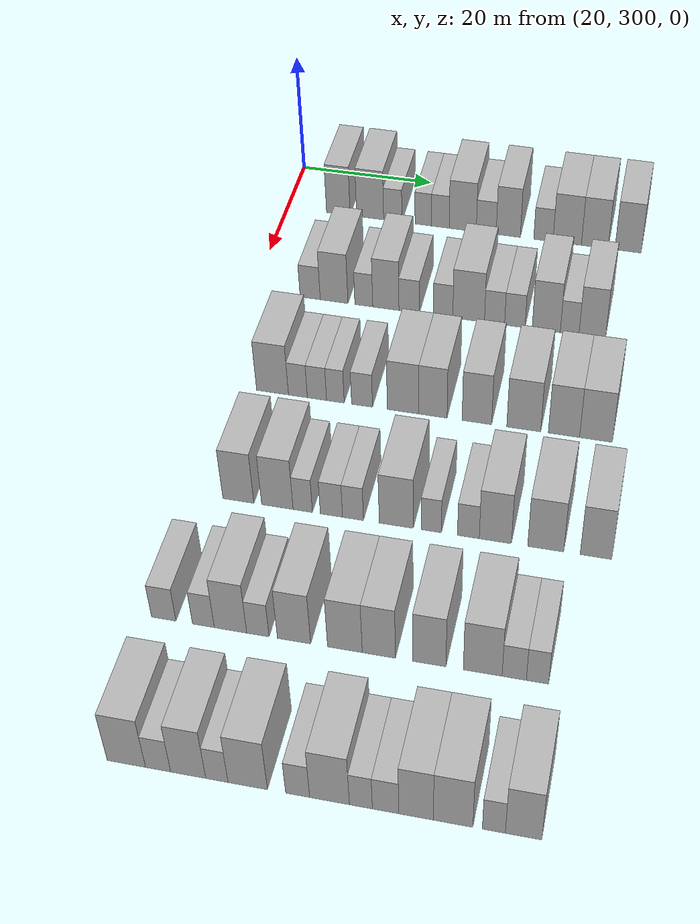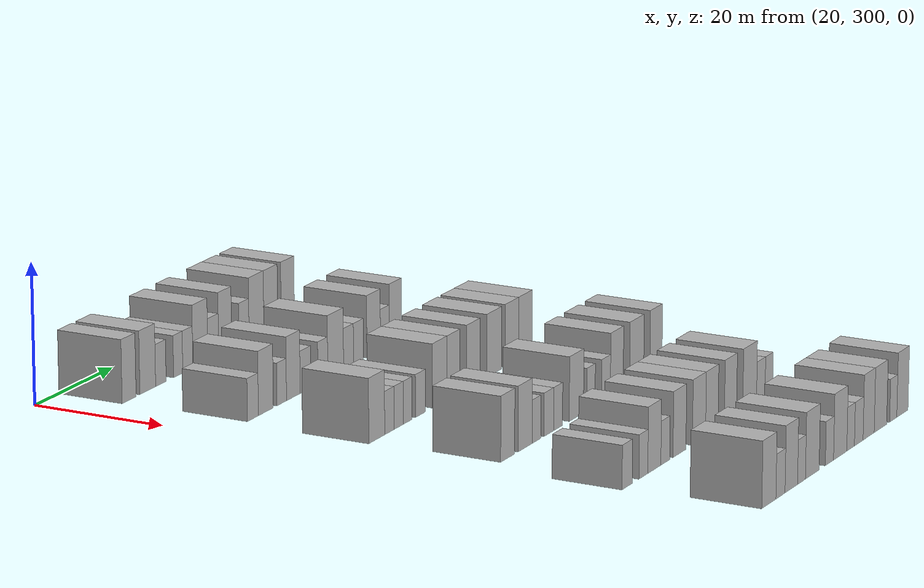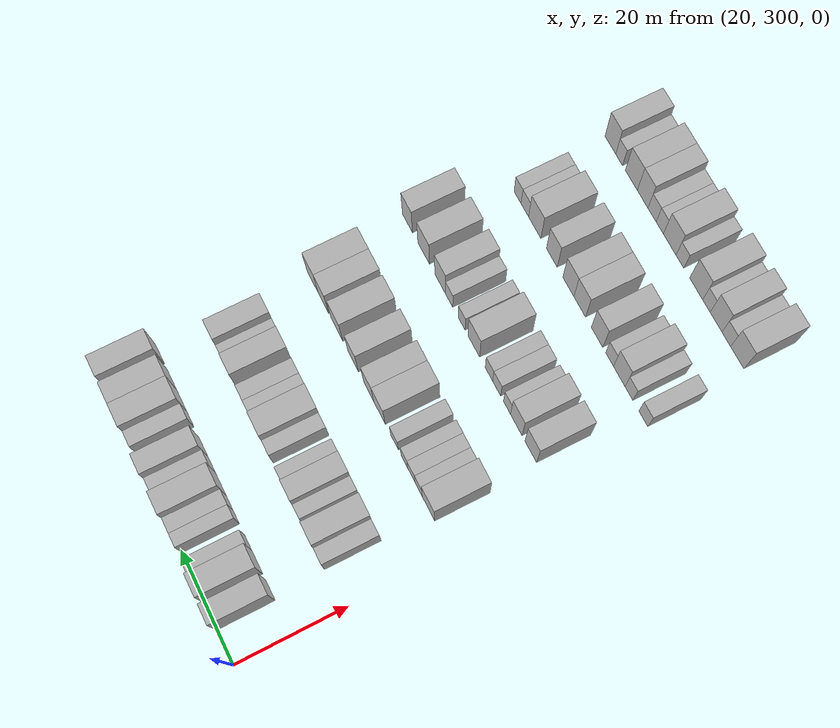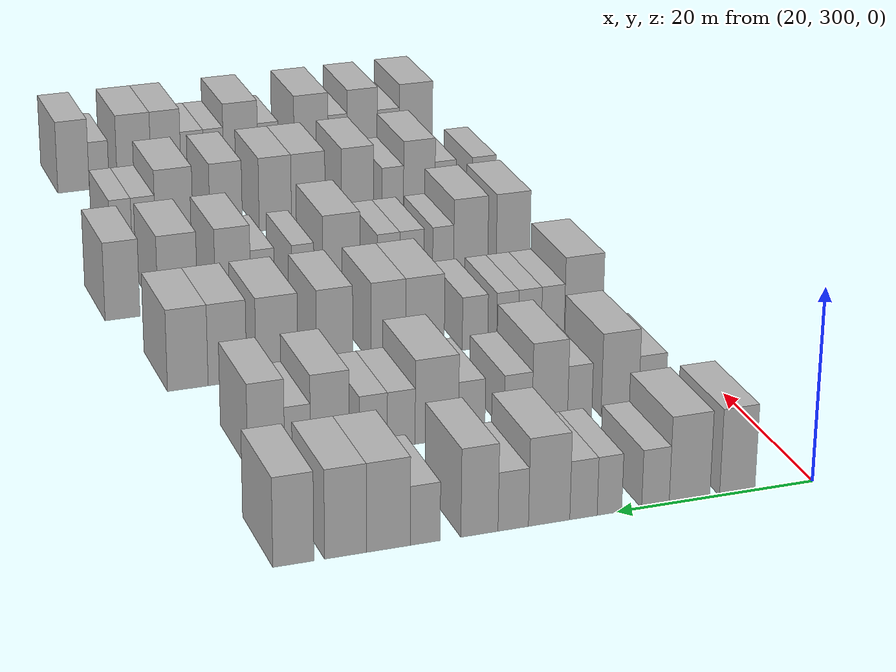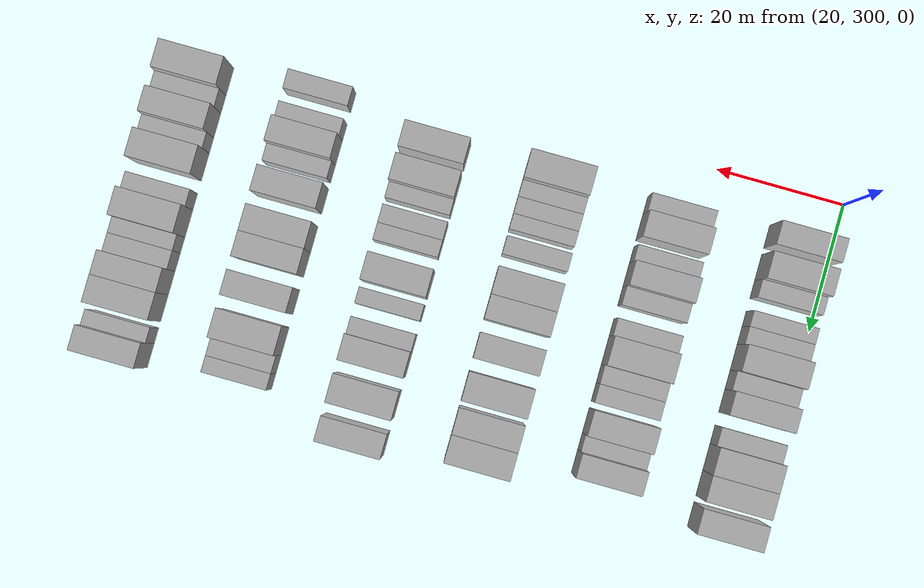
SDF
<sdf version="1.6">
 <world name="default">
  <model name="building_159">
   <static>1</static>
   <pose>25.0000 307.8364 0 0.000000 0.000000 0.000000</pose>
   <link name="link">
    <pose>0 0 4.50 0 0 0</pose>
    <collision name="collision"><geometry><box><size>10.0000 3.6278 9.0000</size></box></geometry></collision>
    <visual name="visual">
     <cast_shadows>0</cast_shadows>
     <geometry><box><size>10.0000 3.6278 9.0000</size></box></geometry>
     <material>
      <script>
       <uri>model://HANNAS_wall/materials/scripts</uri>
       <uri>model://HANNAS_wall/materials/textures</uri>
       <name>vrc/HANNAS_wall</name>
      </script>
     </material>
    </visual>
   </link>
  </model>
  <model name="building_160">
   <static>1</static>
   <pose>25.0000 312.7195 0 0.000000 0.000000 0.000000</pose>
   <link name="link">
    <pose>0 0 4.50 0 0 0</pose>
    <collision name="collision"><geometry><box><size>10.0000 4.1385 9.0000</size></box></geometry></collision>
    <visual name="visual">
     <cast_shadows>0</cast_shadows>
     <geometry><box><size>10.0000 4.1385 9.0000</size></box></geometry>
     <material>
      <script>
       <uri>model://HANNAS_wall/materials/scripts</uri>
       <uri>model://HANNAS_wall/materials/textures</uri>
       <name>vrc/HANNAS_wall</name>
      </script>
     </material>
    </visual>
   </link>
  </model>
  <model name="building_161">
   <static>1</static>
   <pose>25.0000 316.1826 0 0.000000 0.000000 0.000000</pose>
   <link name="link">
    <pose>0 0 3.00 0 0 0</pose>
    <collision name="collision"><geometry><box><size>10.0000 2.7876 6.0000</size></box></geometry></collision>
    <visual name="visual">
     <cast_shadows>0</cast_shadows>
     <geometry><box><size>10.0000 2.7876 6.0000</size></box></geometry>
     <material>
      <script>
       <uri>model://HANNAS_wall/materials/scripts</uri>
       <uri>model://HANNAS_wall/materials/textures</uri>
       <name>vrc/HANNAS_wall</name>
      </script>
     </material>
    </visual>
   </link>
  </model>
  <model name="building_162">
   <static>1</static>
   <pose>25.0000 320.8050 0 0.000000 0.000000 0.000000</pose>
   <link name="link">
    <pose>0 0 3.00 0 0 0</pose>
    <collision name="collision"><geometry><box><size>10.0000 2.4573 6.0000</size></box></geometry></collision>
    <visual name="visual">
     <cast_shadows>0</cast_shadows>
     <geometry><box><size>10.0000 2.4573 6.0000</size></box></geometry>
     <material>
      <script>
       <uri>model://HANNAS_wall/materials/scripts</uri>
       <uri>model://HANNAS_wall/materials/textures</uri>
       <name>vrc/HANNAS_wall</name>
      </script>
     </material>
    </visual>
   </link>
  </model>
  <model name="building_163">
   <static>1</static>
   <pose>25.0000 323.3936 0 0.000000 0.000000 0.000000</pose>
   <link name="link">
    <pose>0 0 3.00 0 0 0</pose>
    <collision name="collision"><geometry><box><size>10.0000 2.7198 6.0000</size></box></geometry></collision>
    <visual name="visual">
     <cast_shadows>0</cast_shadows>
     <geometry><box><size>10.0000 2.7198 6.0000</size></box></geometry>
     <material>
      <script>
       <uri>model://HANNAS_wall/materials/scripts</uri>
       <uri>model://HANNAS_wall/materials/textures</uri>
       <name>vrc/HANNAS_wall</name>
      </script>
     </material>
    </visual>
   </link>
  </model>
  <model name="building_164">
   <static>1</static>
   <pose>25.0000 326.7946 0 0.000000 0.000000 0.000000</pose>
   <link name="link">
    <pose>0 0 4.50 0 0 0</pose>
    <collision name="collision"><geometry><box><size>10.0000 4.0823 9.0000</size></box></geometry></collision>
    <visual name="visual">
     <cast_shadows>0</cast_shadows>
     <geometry><box><size>10.0000 4.0823 9.0000</size></box></geometry>
     <material>
      <script>
       <uri>model://HANNAS_wall/materials/scripts</uri>
       <uri>model://HANNAS_wall/materials/textures</uri>
       <name>vrc/HANNAS_wall</name>
      </script>
     </material>
    </visual>
   </link>
  </model>
  <model name="building_165">
   <static>1</static>
   <pose>25.0000 330.3265 0 0.000000 0.000000 0.000000</pose>
   <link name="link">
    <pose>0 0 3.00 0 0 0</pose>
    <collision name="collision"><geometry><box><size>10.0000 2.9815 6.0000</size></box></geometry></collision>
    <visual name="visual">
     <cast_shadows>0</cast_shadows>
     <geometry><box><size>10.0000 2.9815 6.0000</size></box></geometry>
     <material>
      <script>
       <uri>model://HANNAS_wall/materials/scripts</uri>
       <uri>model://HANNAS_wall/materials/textures</uri>
       <name>vrc/HANNAS_wall</name>
      </script>
     </material>
    </visual>
   </link>
  </model>
  <model name="building_166">
   <static>1</static>
   <pose>25.0000 333.6222 0 0.000000 0.000000 0.000000</pose>
   <link name="link">
    <pose>0 0 4.50 0 0 0</pose>
    <collision name="collision"><geometry><box><size>10.0000 3.6100 9.0000</size></box></geometry></collision>
    <visual name="visual">
     <cast_shadows>0</cast_shadows>
     <geometry><box><size>10.0000 3.6100 9.0000</size></box></geometry>
     <material>
      <script>
       <uri>model://HANNAS_wall/materials/scripts</uri>
       <uri>model://HANNAS_wall/materials/textures</uri>
       <name>vrc/HANNAS_wall</name>
      </script>
     </material>
    </visual>
   </link>
  </model>
  <model name="building_167">
   <static>1</static>
   <pose>25.0000 338.8561 0 0.000000 0.000000 0.000000</pose>
   <link name="link">
    <pose>0 0 3.00 0 0 0</pose>
    <collision name="collision"><geometry><box><size>10.0000 2.8579 6.0000</size></box></geometry></collision>
    <visual name="visual">
     <cast_shadows>0</cast_shadows>
     <geometry><box><size>10.0000 2.8579 6.0000</size></box></geometry>
     <material>
      <script>
       <uri>model://HANNAS_wall/materials/scripts</uri>
       <uri>model://HANNAS_wall/materials/textures</uri>
       <name>vrc/HANNAS_wall</name>
      </script>
     </material>
    </visual>
   </link>
  </model>
  <model name="building_168">
   <static>1</static>
   <pose>25.0000 342.3810 0 0.000000 0.000000 0.000000</pose>
   <link name="link">
    <pose>0 0 4.50 0 0 0</pose>
    <collision name="collision"><geometry><box><size>10.0000 4.1919 9.0000</size></box></geometry></collision>
    <visual name="visual">
     <cast_shadows>0</cast_shadows>
     <geometry><box><size>10.0000 4.1919 9.0000</size></box></geometry>
     <material>
      <script>
       <uri>model://HANNAS_wall/materials/scripts</uri>
       <uri>model://HANNAS_wall/materials/textures</uri>
       <name>vrc/HANNAS_wall</name>
      </script>
     </material>
    </visual>
   </link>
  </model>
  <model name="building_169">
   <static>1</static>
   <pose>25.0000 346.4459 0 0.000000 0.000000 0.000000</pose>
   <link name="link">
    <pose>0 0 4.50 0 0 0</pose>
    <collision name="collision"><geometry><box><size>10.0000 3.9378 9.0000</size></box></geometry></collision>
    <visual name="visual">
     <cast_shadows>0</cast_shadows>
     <geometry><box><size>10.0000 3.9378 9.0000</size></box></geometry>
     <material>
      <script>
       <uri>model://HANNAS_wall/materials/scripts</uri>
       <uri>model://HANNAS_wall/materials/textures</uri>
       <name>vrc/HANNAS_wall</name>
      </script>
     </material>
    </visual>
   </link>
  </model>
  <model name="building_170">
   <static>1</static>
   <pose>25.0000 351.3313 0 0.000000 0.000000 0.000000</pose>
   <link name="link">
    <pose>0 0 4.50 0 0 0</pose>
    <collision name="collision"><geometry><box><size>10.0000 3.8329 9.0000</size></box></geometry></collision>
    <visual name="visual">
     <cast_shadows>0</cast_shadows>
     <geometry><box><size>10.0000 3.8329 9.0000</size></box></geometry>
     <material>
      <script>
       <uri>model://HANNAS_wall/materials/scripts</uri>
       <uri>model://HANNAS_wall/materials/textures</uri>
       <name>vrc/HANNAS_wall</name>
      </script>
     </material>
    </visual>
   </link>
  </model>
  <model name="building_331">
   <static>1</static>
   <pose>44.0000 308.3106 0 0.000000 0.000000 0.000000</pose>
   <link name="link">
    <pose>0 0 3.00 0 0 0</pose>
    <collision name="collision"><geometry><box><size>10.0000 2.9301 6.0000</size></box></geometry></collision>
    <visual name="visual">
     <cast_shadows>0</cast_shadows>
     <geometry><box><size>10.0000 2.9301 6.0000</size></box></geometry>
     <material>
      <script>
       <uri>model://HANNAS_wall/materials/scripts</uri>
       <uri>model://HANNAS_wall/materials/textures</uri>
       <name>vrc/HANNAS_wall</name>
      </script>
     </material>
    </visual>
   </link>
  </model>
  <model name="building_332">
   <static>1</static>
   <pose>44.0000 311.7897 0 0.000000 0.000000 0.000000</pose>
   <link name="link">
    <pose>0 0 4.50 0 0 0</pose>
    <collision name="collision"><geometry><box><size>10.0000 4.0280 9.0000</size></box></geometry></collision>
    <visual name="visual">
     <cast_shadows>0</cast_shadows>
     <geometry><box><size>10.0000 4.0280 9.0000</size></box></geometry>
     <material>
      <script>
       <uri>model://HANNAS_wall/materials/scripts</uri>
       <uri>model://HANNAS_wall/materials/textures</uri>
       <name>vrc/HANNAS_wall</name>
      </script>
     </material>
    </visual>
   </link>
  </model>
  <model name="building_333">
   <static>1</static>
   <pose>44.0000 316.0957 0 0.000000 0.000000 0.000000</pose>
   <link name="link">
    <pose>0 0 3.00 0 0 0</pose>
    <collision name="collision"><geometry><box><size>10.0000 2.5841 6.0000</size></box></geometry></collision>
    <visual name="visual">
     <cast_shadows>0</cast_shadows>
     <geometry><box><size>10.0000 2.5841 6.0000</size></box></geometry>
     <material>
      <script>
       <uri>model://HANNAS_wall/materials/scripts</uri>
       <uri>model://HANNAS_wall/materials/textures</uri>
       <name>vrc/HANNAS_wall</name>
      </script>
     </material>
    </visual>
   </link>
  </model>
  <model name="building_334">
   <static>1</static>
   <pose>44.0000 319.2707 0 0.000000 0.000000 0.000000</pose>
   <link name="link">
    <pose>0 0 4.50 0 0 0</pose>
    <collision name="collision"><geometry><box><size>10.0000 3.7658 9.0000</size></box></geometry></collision>
    <visual name="visual">
     <cast_shadows>0</cast_shadows>
     <geometry><box><size>10.0000 3.7658 9.0000</size></box></geometry>
     <material>
      <script>
       <uri>model://HANNAS_wall/materials/scripts</uri>
       <uri>model://HANNAS_wall/materials/textures</uri>
       <name>vrc/HANNAS_wall</name>
      </script>
     </material>
    </visual>
   </link>
  </model>
  <model name="building_335">
   <static>1</static>
   <pose>44.0000 322.6219 0 0.000000 0.000000 0.000000</pose>
   <link name="link">
    <pose>0 0 3.00 0 0 0</pose>
    <collision name="collision"><geometry><box><size>10.0000 2.9367 6.0000</size></box></geometry></collision>
    <visual name="visual">
     <cast_shadows>0</cast_shadows>
     <geometry><box><size>10.0000 2.9367 6.0000</size></box></geometry>
     <material>
      <script>
       <uri>model://HANNAS_wall/materials/scripts</uri>
       <uri>model://HANNAS_wall/materials/textures</uri>
       <name>vrc/HANNAS_wall</name>
      </script>
     </material>
    </visual>
   </link>
  </model>
  <model name="building_336">
   <static>1</static>
   <pose>44.0000 327.4677 0 0.000000 0.000000 0.000000</pose>
   <link name="link">
    <pose>0 0 3.00 0 0 0</pose>
    <collision name="collision"><geometry><box><size>10.0000 2.7549 6.0000</size></box></geometry></collision>
    <visual name="visual">
     <cast_shadows>0</cast_shadows>
     <geometry><box><size>10.0000 2.7549 6.0000</size></box></geometry>
     <material>
      <script>
       <uri>model://HANNAS_wall/materials/scripts</uri>
       <uri>model://HANNAS_wall/materials/textures</uri>
       <name>vrc/HANNAS_wall</name>
      </script>
     </material>
    </visual>
   </link>
  </model>
  <model name="building_337">
   <static>1</static>
   <pose>44.0000 331.0854 0 0.000000 0.000000 0.000000</pose>
   <link name="link">
    <pose>0 0 4.50 0 0 0</pose>
    <collision name="collision"><geometry><box><size>10.0000 4.4804 9.0000</size></box></geometry></collision>
    <visual name="visual">
     <cast_shadows>0</cast_shadows>
     <geometry><box><size>10.0000 4.4804 9.0000</size></box></geometry>
     <material>
      <script>
       <uri>model://HANNAS_wall/materials/scripts</uri>
       <uri>model://HANNAS_wall/materials/textures</uri>
       <name>vrc/HANNAS_wall</name>
      </script>
     </material>
    </visual>
   </link>
  </model>
  <model name="building_338">
   <static>1</static>
   <pose>44.0000 334.7438 0 0.000000 0.000000 0.000000</pose>
   <link name="link">
    <pose>0 0 3.00 0 0 0</pose>
    <collision name="collision"><geometry><box><size>10.0000 2.8365 6.0000</size></box></geometry></collision>
    <visual name="visual">
     <cast_shadows>0</cast_shadows>
     <geometry><box><size>10.0000 2.8365 6.0000</size></box></geometry>
     <material>
      <script>
       <uri>model://HANNAS_wall/materials/scripts</uri>
       <uri>model://HANNAS_wall/materials/textures</uri>
       <name>vrc/HANNAS_wall</name>
      </script>
     </material>
    </visual>
   </link>
  </model>
  <model name="building_339">
   <static>1</static>
   <pose>44.0000 337.5961 0 0.000000 0.000000 0.000000</pose>
   <link name="link">
    <pose>0 0 3.00 0 0 0</pose>
    <collision name="collision"><geometry><box><size>10.0000 2.8681 6.0000</size></box></geometry></collision>
    <visual name="visual">
     <cast_shadows>0</cast_shadows>
     <geometry><box><size>10.0000 2.8681 6.0000</size></box></geometry>
     <material>
      <script>
       <uri>model://HANNAS_wall/materials/scripts</uri>
       <uri>model://HANNAS_wall/materials/textures</uri>
       <name>vrc/HANNAS_wall</name>
      </script>
     </material>
    </visual>
   </link>
  </model>
  <model name="building_340">
   <static>1</static>
   <pose>44.0000 341.9923 0 0.000000 0.000000 0.000000</pose>
   <link name="link">
    <pose>0 0 4.50 0 0 0</pose>
    <collision name="collision"><geometry><box><size>10.0000 3.9243 9.0000</size></box></geometry></collision>
    <visual name="visual">
     <cast_shadows>0</cast_shadows>
     <geometry><box><size>10.0000 3.9243 9.0000</size></box></geometry>
     <material>
      <script>
       <uri>model://HANNAS_wall/materials/scripts</uri>
       <uri>model://HANNAS_wall/materials/textures</uri>
       <name>vrc/HANNAS_wall</name>
      </script>
     </material>
    </visual>
   </link>
  </model>
  <model name="building_341">
   <static>1</static>
   <pose>44.0000 345.2522 0 0.000000 0.000000 0.000000</pose>
   <link name="link">
    <pose>0 0 3.00 0 0 0</pose>
    <collision name="collision"><geometry><box><size>10.0000 2.5956 6.0000</size></box></geometry></collision>
    <visual name="visual">
     <cast_shadows>0</cast_shadows>
     <geometry><box><size>10.0000 2.5956 6.0000</size></box></geometry>
     <material>
      <script>
       <uri>model://HANNAS_wall/materials/scripts</uri>
       <uri>model://HANNAS_wall/materials/textures</uri>
       <name>vrc/HANNAS_wall</name>
      </script>
     </material>
    </visual>
   </link>
  </model>
  <model name="building_342">
   <static>1</static>
   <pose>44.0000 348.3865 0 0.000000 0.000000 0.000000</pose>
   <link name="link">
    <pose>0 0 4.50 0 0 0</pose>
    <collision name="collision"><geometry><box><size>10.0000 3.6729 9.0000</size></box></geometry></collision>
    <visual name="visual">
     <cast_shadows>0</cast_shadows>
     <geometry><box><size>10.0000 3.6729 9.0000</size></box></geometry>
     <material>
      <script>
       <uri>model://HANNAS_wall/materials/scripts</uri>
       <uri>model://HANNAS_wall/materials/textures</uri>
       <name>vrc/HANNAS_wall</name>
      </script>
     </material>
    </visual>
   </link>
  </model>
  <model name="building_511">
   <static>1</static>
   <pose>63.0000 307.9824 0 0.000000 0.000000 0.000000</pose>
   <link name="link">
    <pose>0 0 4.50 0 0 0</pose>
    <collision name="collision"><geometry><box><size>10.0000 4.3789 9.0000</size></box></geometry></collision>
    <visual name="visual">
     <cast_shadows>0</cast_shadows>
     <geometry><box><size>10.0000 4.3789 9.0000</size></box></geometry>
     <material>
      <script>
       <uri>model://HANNAS_wall/materials/scripts</uri>
       <uri>model://HANNAS_wall/materials/textures</uri>
       <name>vrc/HANNAS_wall</name>
      </script>
     </material>
    </visual>
   </link>
  </model>
  <model name="building_512">
   <static>1</static>
   <pose>63.0000 311.4646 0 0.000000 0.000000 0.000000</pose>
   <link name="link">
    <pose>0 0 3.00 0 0 0</pose>
    <collision name="collision"><geometry><box><size>10.0000 2.5856 6.0000</size></box></geometry></collision>
    <visual name="visual">
     <cast_shadows>0</cast_shadows>
     <geometry><box><size>10.0000 2.5856 6.0000</size></box></geometry>
     <material>
      <script>
       <uri>model://HANNAS_wall/materials/scripts</uri>
       <uri>model://HANNAS_wall/materials/textures</uri>
       <name>vrc/HANNAS_wall</name>
      </script>
     </material>
    </visual>
   </link>
  </model>
  <model name="building_513">
   <static>1</static>
   <pose>63.0000 314.0671 0 0.000000 0.000000 0.000000</pose>
   <link name="link">
    <pose>0 0 3.00 0 0 0</pose>
    <collision name="collision"><geometry><box><size>10.0000 2.6192 6.0000</size></box></geometry></collision>
    <visual name="visual">
     <cast_shadows>0</cast_shadows>
     <geometry><box><size>10.0000 2.6192 6.0000</size></box></geometry>
     <material>
      <script>
       <uri>model://HANNAS_wall/materials/scripts</uri>
       <uri>model://HANNAS_wall/materials/textures</uri>
       <name>vrc/HANNAS_wall</name>
      </script>
     </material>
    </visual>
   </link>
  </model>
  <model name="building_514">
   <static>1</static>
   <pose>63.0000 316.5784 0 0.000000 0.000000 0.000000</pose>
   <link name="link">
    <pose>0 0 3.00 0 0 0</pose>
    <collision name="collision"><geometry><box><size>10.0000 2.4034 6.0000</size></box></geometry></collision>
    <visual name="visual">
     <cast_shadows>0</cast_shadows>
     <geometry><box><size>10.0000 2.4034 6.0000</size></box></geometry>
     <material>
      <script>
       <uri>model://HANNAS_wall/materials/scripts</uri>
       <uri>model://HANNAS_wall/materials/textures</uri>
       <name>vrc/HANNAS_wall</name>
      </script>
     </material>
    </visual>
   </link>
  </model>
  <model name="building_515">
   <static>1</static>
   <pose>63.0000 320.1967 0 0.000000 0.000000 0.000000</pose>
   <link name="link">
    <pose>0 0 3.00 0 0 0</pose>
    <collision name="collision"><geometry><box><size>10.0000 2.8332 6.0000</size></box></geometry></collision>
    <visual name="visual">
     <cast_shadows>0</cast_shadows>
     <geometry><box><size>10.0000 2.8332 6.0000</size></box></geometry>
     <material>
      <script>
       <uri>model://HANNAS_wall/materials/scripts</uri>
       <uri>model://HANNAS_wall/materials/textures</uri>
       <name>vrc/HANNAS_wall</name>
      </script>
     </material>
    </visual>
   </link>
  </model>
  <model name="building_516">
   <static>1</static>
   <pose>63.0000 325.7327 0 0.000000 0.000000 0.000000</pose>
   <link name="link">
    <pose>0 0 4.50 0 0 0</pose>
    <collision name="collision"><geometry><box><size>10.0000 4.2389 9.0000</size></box></geometry></collision>
    <visual name="visual">
     <cast_shadows>0</cast_shadows>
     <geometry><box><size>10.0000 4.2389 9.0000</size></box></geometry>
     <material>
      <script>
       <uri>model://HANNAS_wall/materials/scripts</uri>
       <uri>model://HANNAS_wall/materials/textures</uri>
       <name>vrc/HANNAS_wall</name>
      </script>
     </material>
    </visual>
   </link>
  </model>
  <model name="building_517">
   <static>1</static>
   <pose>63.0000 329.7349 0 0.000000 0.000000 0.000000</pose>
   <link name="link">
    <pose>0 0 4.50 0 0 0</pose>
    <collision name="collision"><geometry><box><size>10.0000 3.7653 9.0000</size></box></geometry></collision>
    <visual name="visual">
     <cast_shadows>0</cast_shadows>
     <geometry><box><size>10.0000 3.7653 9.0000</size></box></geometry>
     <material>
      <script>
       <uri>model://HANNAS_wall/materials/scripts</uri>
       <uri>model://HANNAS_wall/materials/textures</uri>
       <name>vrc/HANNAS_wall</name>
      </script>
     </material>
    </visual>
   </link>
  </model>
  <model name="building_518">
   <static>1</static>
   <pose>63.0000 335.5741 0 0.000000 0.000000 0.000000</pose>
   <link name="link">
    <pose>0 0 4.50 0 0 0</pose>
    <collision name="collision"><geometry><box><size>10.0000 3.9132 9.0000</size></box></geometry></collision>
    <visual name="visual">
     <cast_shadows>0</cast_shadows>
     <geometry><box><size>10.0000 3.9132 9.0000</size></box></geometry>
     <material>
      <script>
       <uri>model://HANNAS_wall/materials/scripts</uri>
       <uri>model://HANNAS_wall/materials/textures</uri>
       <name>vrc/HANNAS_wall</name>
      </script>
     </material>
    </visual>
   </link>
  </model>
  <model name="building_519">
   <static>1</static>
   <pose>63.0000 341.7600 0 0.000000 0.000000 0.000000</pose>
   <link name="link">
    <pose>0 0 4.50 0 0 0</pose>
    <collision name="collision"><geometry><box><size>10.0000 4.4586 9.0000</size></box></geometry></collision>
    <visual name="visual">
     <cast_shadows>0</cast_shadows>
     <geometry><box><size>10.0000 4.4586 9.0000</size></box></geometry>
     <material>
      <script>
       <uri>model://HANNAS_wall/materials/scripts</uri>
       <uri>model://HANNAS_wall/materials/textures</uri>
       <name>vrc/HANNAS_wall</name>
      </script>
     </material>
    </visual>
   </link>
  </model>
  <model name="building_520">
   <static>1</static>
   <pose>63.0000 347.0267 0 0.000000 0.000000 0.000000</pose>
   <link name="link">
    <pose>0 0 4.50 0 0 0</pose>
    <collision name="collision"><geometry><box><size>10.0000 4.0749 9.0000</size></box></geometry></collision>
    <visual name="visual">
     <cast_shadows>0</cast_shadows>
     <geometry><box><size>10.0000 4.0749 9.0000</size></box></geometry>
     <material>
      <script>
       <uri>model://HANNAS_wall/materials/scripts</uri>
       <uri>model://HANNAS_wall/materials/textures</uri>
       <name>vrc/HANNAS_wall</name>
      </script>
     </material>
    </visual>
   </link>
  </model>
  <model name="building_521">
   <static>1</static>
   <pose>63.0000 351.1937 0 0.000000 0.000000 0.000000</pose>
   <link name="link">
    <pose>0 0 4.50 0 0 0</pose>
    <collision name="collision"><geometry><box><size>10.0000 4.2590 9.0000</size></box></geometry></collision>
    <visual name="visual">
     <cast_shadows>0</cast_shadows>
     <geometry><box><size>10.0000 4.2590 9.0000</size></box></geometry>
     <material>
      <script>
       <uri>model://HANNAS_wall/materials/scripts</uri>
       <uri>model://HANNAS_wall/materials/textures</uri>
       <name>vrc/HANNAS_wall</name>
      </script>
     </material>
    </visual>
   </link>
  </model>
  <model name="building_685">
   <static>1</static>
   <pose>82.0000 308.7541 0 0.000000 0.000000 0.000000</pose>
   <link name="link">
    <pose>0 0 4.50 0 0 0</pose>
    <collision name="collision"><geometry><box><size>10.0000 4.0069 9.0000</size></box></geometry></collision>
    <visual name="visual">
     <cast_shadows>0</cast_shadows>
     <geometry><box><size>10.0000 4.0069 9.0000</size></box></geometry>
     <material>
      <script>
       <uri>model://HANNAS_wall/materials/scripts</uri>
       <uri>model://HANNAS_wall/materials/textures</uri>
       <name>vrc/HANNAS_wall</name>
      </script>
     </material>
    </visual>
   </link>
  </model>
  <model name="building_686">
   <static>1</static>
   <pose>82.0000 313.7742 0 0.000000 0.000000 0.000000</pose>
   <link name="link">
    <pose>0 0 4.50 0 0 0</pose>
    <collision name="collision"><geometry><box><size>10.0000 4.0332 9.0000</size></box></geometry></collision>
    <visual name="visual">
     <cast_shadows>0</cast_shadows>
     <geometry><box><size>10.0000 4.0332 9.0000</size></box></geometry>
     <material>
      <script>
       <uri>model://HANNAS_wall/materials/scripts</uri>
       <uri>model://HANNAS_wall/materials/textures</uri>
       <name>vrc/HANNAS_wall</name>
      </script>
     </material>
    </visual>
   </link>
  </model>
  <model name="building_687">
   <static>1</static>
   <pose>82.0000 317.0277 0 0.000000 0.000000 0.000000</pose>
   <link name="link">
    <pose>0 0 3.00 0 0 0</pose>
    <collision name="collision"><geometry><box><size>10.0000 2.4738 6.0000</size></box></geometry></collision>
    <visual name="visual">
     <cast_shadows>0</cast_shadows>
     <geometry><box><size>10.0000 2.4738 6.0000</size></box></geometry>
     <material>
      <script>
       <uri>model://HANNAS_wall/materials/scripts</uri>
       <uri>model://HANNAS_wall/materials/textures</uri>
       <name>vrc/HANNAS_wall</name>
      </script>
     </material>
    </visual>
   </link>
  </model>
  <model name="building_688">
   <static>1</static>
   <pose>82.0000 320.6768 0 0.000000 0.000000 0.000000</pose>
   <link name="link">
    <pose>0 0 3.00 0 0 0</pose>
    <collision name="collision"><geometry><box><size>10.0000 2.8245 6.0000</size></box></geometry></collision>
    <visual name="visual">
     <cast_shadows>0</cast_shadows>
     <geometry><box><size>10.0000 2.8245 6.0000</size></box></geometry>
     <material>
      <script>
       <uri>model://HANNAS_wall/materials/scripts</uri>
       <uri>model://HANNAS_wall/materials/textures</uri>
       <name>vrc/HANNAS_wall</name>
      </script>
     </material>
    </visual>
   </link>
  </model>
  <model name="building_689">
   <static>1</static>
   <pose>82.0000 323.4099 0 0.000000 0.000000 0.000000</pose>
   <link name="link">
    <pose>0 0 3.00 0 0 0</pose>
    <collision name="collision"><geometry><box><size>10.0000 2.6417 6.0000</size></box></geometry></collision>
    <visual name="visual">
     <cast_shadows>0</cast_shadows>
     <geometry><box><size>10.0000 2.6417 6.0000</size></box></geometry>
     <material>
      <script>
       <uri>model://HANNAS_wall/materials/scripts</uri>
       <uri>model://HANNAS_wall/materials/textures</uri>
       <name>vrc/HANNAS_wall</name>
      </script>
     </material>
    </visual>
   </link>
  </model>
  <model name="building_690">
   <static>1</static>
   <pose>82.0000 328.8628 0 0.000000 0.000000 0.000000</pose>
   <link name="link">
    <pose>0 0 4.50 0 0 0</pose>
    <collision name="collision"><geometry><box><size>10.0000 4.2643 9.0000</size></box></geometry></collision>
    <visual name="visual">
     <cast_shadows>0</cast_shadows>
     <geometry><box><size>10.0000 4.2643 9.0000</size></box></geometry>
     <material>
      <script>
       <uri>model://HANNAS_wall/materials/scripts</uri>
       <uri>model://HANNAS_wall/materials/textures</uri>
       <name>vrc/HANNAS_wall</name>
      </script>
     </material>
    </visual>
   </link>
  </model>
  <model name="building_691">
   <static>1</static>
   <pose>82.0000 333.2507 0 0.000000 0.000000 0.000000</pose>
   <link name="link">
    <pose>0 0 3.00 0 0 0</pose>
    <collision name="collision"><geometry><box><size>10.0000 2.5115 6.0000</size></box></geometry></collision>
    <visual name="visual">
     <cast_shadows>0</cast_shadows>
     <geometry><box><size>10.0000 2.5115 6.0000</size></box></geometry>
     <material>
      <script>
       <uri>model://HANNAS_wall/materials/scripts</uri>
       <uri>model://HANNAS_wall/materials/textures</uri>
       <name>vrc/HANNAS_wall</name>
      </script>
     </material>
    </visual>
   </link>
  </model>
  <model name="building_692">
   <static>1</static>
   <pose>82.0000 337.8518 0 0.000000 0.000000 0.000000</pose>
   <link name="link">
    <pose>0 0 3.00 0 0 0</pose>
    <collision name="collision"><geometry><box><size>10.0000 2.6907 6.0000</size></box></geometry></collision>
    <visual name="visual">
     <cast_shadows>0</cast_shadows>
     <geometry><box><size>10.0000 2.6907 6.0000</size></box></geometry>
     <material>
      <script>
       <uri>model://HANNAS_wall/materials/scripts</uri>
       <uri>model://HANNAS_wall/materials/textures</uri>
       <name>vrc/HANNAS_wall</name>
      </script>
     </material>
    </visual>
   </link>
  </model>
  <model name="building_693">
   <static>1</static>
   <pose>82.0000 341.1807 0 0.000000 0.000000 0.000000</pose>
   <link name="link">
    <pose>0 0 4.50 0 0 0</pose>
    <collision name="collision"><geometry><box><size>10.0000 3.9673 9.0000</size></box></geometry></collision>
    <visual name="visual">
     <cast_shadows>0</cast_shadows>
     <geometry><box><size>10.0000 3.9673 9.0000</size></box></geometry>
     <material>
      <script>
       <uri>model://HANNAS_wall/materials/scripts</uri>
       <uri>model://HANNAS_wall/materials/textures</uri>
       <name>vrc/HANNAS_wall</name>
      </script>
     </material>
    </visual>
   </link>
  </model>
  <model name="building_694">
   <static>1</static>
   <pose>82.0000 347.3627 0 0.000000 0.000000 0.000000</pose>
   <link name="link">
    <pose>0 0 4.50 0 0 0</pose>
    <collision name="collision"><geometry><box><size>10.0000 4.3966 9.0000</size></box></geometry></collision>
    <visual name="visual">
     <cast_shadows>0</cast_shadows>
     <geometry><box><size>10.0000 4.3966 9.0000</size></box></geometry>
     <material>
      <script>
       <uri>model://HANNAS_wall/materials/scripts</uri>
       <uri>model://HANNAS_wall/materials/textures</uri>
       <name>vrc/HANNAS_wall</name>
      </script>
     </material>
    </visual>
   </link>
  </model>
  <model name="building_695">
   <static>1</static>
   <pose>82.0000 353.4793 0 0.000000 0.000000 0.000000</pose>
   <link name="link">
    <pose>0 0 4.50 0 0 0</pose>
    <collision name="collision"><geometry><box><size>10.0000 3.8367 9.0000</size></box></geometry></collision>
    <visual name="visual">
     <cast_shadows>0</cast_shadows>
     <geometry><box><size>10.0000 3.8367 9.0000</size></box></geometry>
     <material>
      <script>
       <uri>model://HANNAS_wall/materials/scripts</uri>
       <uri>model://HANNAS_wall/materials/textures</uri>
       <name>vrc/HANNAS_wall</name>
      </script>
     </material>
    </visual>
   </link>
  </model>
  <model name="building_859">
   <static>1</static>
   <pose>101.0000 305.2281 0 0.000000 0.000000 0.000000</pose>
   <link name="link">
    <pose>0 0 3.00 0 0 0</pose>
    <collision name="collision"><geometry><box><size>10.0000 2.9692 6.0000</size></box></geometry></collision>
    <visual name="visual">
     <cast_shadows>0</cast_shadows>
     <geometry><box><size>10.0000 2.9692 6.0000</size></box></geometry>
     <material>
      <script>
       <uri>model://HANNAS_wall/materials/scripts</uri>
       <uri>model://HANNAS_wall/materials/textures</uri>
       <name>vrc/HANNAS_wall</name>
      </script>
     </material>
    </visual>
   </link>
  </model>
  <model name="building_860">
   <static>1</static>
   <pose>101.0000 310.0265 0 0.000000 0.000000 0.000000</pose>
   <link name="link">
    <pose>0 0 3.00 0 0 0</pose>
    <collision name="collision"><geometry><box><size>10.0000 2.6277 6.0000</size></box></geometry></collision>
    <visual name="visual">
     <cast_shadows>0</cast_shadows>
     <geometry><box><size>10.0000 2.6277 6.0000</size></box></geometry>
     <material>
      <script>
       <uri>model://HANNAS_wall/materials/scripts</uri>
       <uri>model://HANNAS_wall/materials/textures</uri>
       <name>vrc/HANNAS_wall</name>
      </script>
     </material>
    </visual>
   </link>
  </model>
  <model name="building_861">
   <static>1</static>
   <pose>101.0000 313.2916 0 0.000000 0.000000 0.000000</pose>
   <link name="link">
    <pose>0 0 4.50 0 0 0</pose>
    <collision name="collision"><geometry><box><size>10.0000 3.9025 9.0000</size></box></geometry></collision>
    <visual name="visual">
     <cast_shadows>0</cast_shadows>
     <geometry><box><size>10.0000 3.9025 9.0000</size></box></geometry>
     <material>
      <script>
       <uri>model://HANNAS_wall/materials/scripts</uri>
       <uri>model://HANNAS_wall/materials/textures</uri>
       <name>vrc/HANNAS_wall</name>
      </script>
     </material>
    </visual>
   </link>
  </model>
  <model name="building_862">
   <static>1</static>
   <pose>101.0000 316.5770 0 0.000000 0.000000 0.000000</pose>
   <link name="link">
    <pose>0 0 3.00 0 0 0</pose>
    <collision name="collision"><geometry><box><size>10.0000 2.6684 6.0000</size></box></geometry></collision>
    <visual name="visual">
     <cast_shadows>0</cast_shadows>
     <geometry><box><size>10.0000 2.6684 6.0000</size></box></geometry>
     <material>
      <script>
       <uri>model://HANNAS_wall/materials/scripts</uri>
       <uri>model://HANNAS_wall/materials/textures</uri>
       <name>vrc/HANNAS_wall</name>
      </script>
     </material>
    </visual>
   </link>
  </model>
  <model name="building_863">
   <static>1</static>
   <pose>101.0000 320.8831 0 0.000000 0.000000 0.000000</pose>
   <link name="link">
    <pose>0 0 4.50 0 0 0</pose>
    <collision name="collision"><geometry><box><size>10.0000 3.9438 9.0000</size></box></geometry></collision>
    <visual name="visual">
     <cast_shadows>0</cast_shadows>
     <geometry><box><size>10.0000 3.9438 9.0000</size></box></geometry>
     <material>
      <script>
       <uri>model://HANNAS_wall/materials/scripts</uri>
       <uri>model://HANNAS_wall/materials/textures</uri>
       <name>vrc/HANNAS_wall</name>
      </script>
     </material>
    </visual>
   </link>
  </model>
  <model name="building_864">
   <static>1</static>
   <pose>101.0000 326.8943 0 0.000000 0.000000 0.000000</pose>
   <link name="link">
    <pose>0 0 4.50 0 0 0</pose>
    <collision name="collision"><geometry><box><size>10.0000 4.0785 9.0000</size></box></geometry></collision>
    <visual name="visual">
     <cast_shadows>0</cast_shadows>
     <geometry><box><size>10.0000 4.0785 9.0000</size></box></geometry>
     <material>
      <script>
       <uri>model://HANNAS_wall/materials/scripts</uri>
       <uri>model://HANNAS_wall/materials/textures</uri>
       <name>vrc/HANNAS_wall</name>
      </script>
     </material>
    </visual>
   </link>
  </model>
  <model name="building_865">
   <static>1</static>
   <pose>101.0000 330.8770 0 0.000000 0.000000 0.000000</pose>
   <link name="link">
    <pose>0 0 4.50 0 0 0</pose>
    <collision name="collision"><geometry><box><size>10.0000 3.8870 9.0000</size></box></geometry></collision>
    <visual name="visual">
     <cast_shadows>0</cast_shadows>
     <geometry><box><size>10.0000 3.8870 9.0000</size></box></geometry>
     <material>
      <script>
       <uri>model://HANNAS_wall/materials/scripts</uri>
       <uri>model://HANNAS_wall/materials/textures</uri>
       <name>vrc/HANNAS_wall</name>
      </script>
     </material>
    </visual>
   </link>
  </model>
  <model name="building_866">
   <static>1</static>
   <pose>101.0000 336.7476 0 0.000000 0.000000 0.000000</pose>
   <link name="link">
    <pose>0 0 4.50 0 0 0</pose>
    <collision name="collision"><geometry><box><size>10.0000 3.8543 9.0000</size></box></geometry></collision>
    <visual name="visual">
     <cast_shadows>0</cast_shadows>
     <geometry><box><size>10.0000 3.8543 9.0000</size></box></geometry>
     <material>
      <script>
       <uri>model://HANNAS_wall/materials/scripts</uri>
       <uri>model://HANNAS_wall/materials/textures</uri>
       <name>vrc/HANNAS_wall</name>
      </script>
     </material>
    </visual>
   </link>
  </model>
  <model name="building_867">
   <static>1</static>
   <pose>101.0000 342.8954 0 0.000000 0.000000 0.000000</pose>
   <link name="link">
    <pose>0 0 4.50 0 0 0</pose>
    <collision name="collision"><geometry><box><size>10.0000 4.4412 9.0000</size></box></geometry></collision>
    <visual name="visual">
     <cast_shadows>0</cast_shadows>
     <geometry><box><size>10.0000 4.4412 9.0000</size></box></geometry>
     <material>
      <script>
       <uri>model://HANNAS_wall/materials/scripts</uri>
       <uri>model://HANNAS_wall/materials/textures</uri>
       <name>vrc/HANNAS_wall</name>
      </script>
     </material>
    </visual>
   </link>
  </model>
  <model name="building_868">
   <static>1</static>
   <pose>101.0000 346.4986 0 0.000000 0.000000 0.000000</pose>
   <link name="link">
    <pose>0 0 3.00 0 0 0</pose>
    <collision name="collision"><geometry><box><size>10.0000 2.7653 6.0000</size></box></geometry></collision>
    <visual name="visual">
     <cast_shadows>0</cast_shadows>
     <geometry><box><size>10.0000 2.7653 6.0000</size></box></geometry>
     <material>
      <script>
       <uri>model://HANNAS_wall/materials/scripts</uri>
       <uri>model://HANNAS_wall/materials/textures</uri>
       <name>vrc/HANNAS_wall</name>
      </script>
     </material>
    </visual>
   </link>
  </model>
  <model name="building_869">
   <static>1</static>
   <pose>101.0000 349.1480 0 0.000000 0.000000 0.000000</pose>
   <link name="link">
    <pose>0 0 3.00 0 0 0</pose>
    <collision name="collision"><geometry><box><size>10.0000 2.5336 6.0000</size></box></geometry></collision>
    <visual name="visual">
     <cast_shadows>0</cast_shadows>
     <geometry><box><size>10.0000 2.5336 6.0000</size></box></geometry>
     <material>
      <script>
       <uri>model://HANNAS_wall/materials/scripts</uri>
       <uri>model://HANNAS_wall/materials/textures</uri>
       <name>vrc/HANNAS_wall</name>
      </script>
     </material>
    </visual>
   </link>
  </model>
  <model name="building_1041">
   <static>1</static>
   <pose>120.0000 307.2035 0 0.000000 0.000000 0.000000</pose>
   <link name="link">
    <pose>0 0 4.50 0 0 0</pose>
    <collision name="collision"><geometry><box><size>10.0000 4.3286 9.0000</size></box></geometry></collision>
    <visual name="visual">
     <cast_shadows>0</cast_shadows>
     <geometry><box><size>10.0000 4.3286 9.0000</size></box></geometry>
     <material>
      <script>
       <uri>model://HANNAS_wall/materials/scripts</uri>
       <uri>model://HANNAS_wall/materials/textures</uri>
       <name>vrc/HANNAS_wall</name>
      </script>
     </material>
    </visual>
   </link>
  </model>
  <model name="building_1042">
   <static>1</static>
   <pose>120.0000 310.7797 0 0.000000 0.000000 0.000000</pose>
   <link name="link">
    <pose>0 0 3.00 0 0 0</pose>
    <collision name="collision"><geometry><box><size>10.0000 2.8237 6.0000</size></box></geometry></collision>
    <visual name="visual">
     <cast_shadows>0</cast_shadows>
     <geometry><box><size>10.0000 2.8237 6.0000</size></box></geometry>
     <material>
      <script>
       <uri>model://HANNAS_wall/materials/scripts</uri>
       <uri>model://HANNAS_wall/materials/textures</uri>
       <name>vrc/HANNAS_wall</name>
      </script>
     </material>
    </visual>
   </link>
  </model>
  <model name="building_1043">
   <static>1</static>
   <pose>120.0000 314.1472 0 0.000000 0.000000 0.000000</pose>
   <link name="link">
    <pose>0 0 4.50 0 0 0</pose>
    <collision name="collision"><geometry><box><size>10.0000 3.9114 9.0000</size></box></geometry></collision>
    <visual name="visual">
     <cast_shadows>0</cast_shadows>
     <geometry><box><size>10.0000 3.9114 9.0000</size></box></geometry>
     <material>
      <script>
       <uri>model://HANNAS_wall/materials/scripts</uri>
       <uri>model://HANNAS_wall/materials/textures</uri>
       <name>vrc/HANNAS_wall</name>
      </script>
     </material>
    </visual>
   </link>
  </model>
  <model name="building_1044">
   <static>1</static>
   <pose>120.0000 317.3422 0 0.000000 0.000000 0.000000</pose>
   <link name="link">
    <pose>0 0 3.00 0 0 0</pose>
    <collision name="collision"><geometry><box><size>10.0000 2.4785 6.0000</size></box></geometry></collision>
    <visual name="visual">
     <cast_shadows>0</cast_shadows>
     <geometry><box><size>10.0000 2.4785 6.0000</size></box></geometry>
     <material>
      <script>
       <uri>model://HANNAS_wall/materials/scripts</uri>
       <uri>model://HANNAS_wall/materials/textures</uri>
       <name>vrc/HANNAS_wall</name>
      </script>
     </material>
    </visual>
   </link>
  </model>
  <model name="building_1045">
   <static>1</static>
   <pose>120.0000 320.7619 0 0.000000 0.000000 0.000000</pose>
   <link name="link">
    <pose>0 0 4.50 0 0 0</pose>
    <collision name="collision"><geometry><box><size>10.0000 4.3609 9.0000</size></box></geometry></collision>
    <visual name="visual">
     <cast_shadows>0</cast_shadows>
     <geometry><box><size>10.0000 4.3609 9.0000</size></box></geometry>
     <material>
      <script>
       <uri>model://HANNAS_wall/materials/scripts</uri>
       <uri>model://HANNAS_wall/materials/textures</uri>
       <name>vrc/HANNAS_wall</name>
      </script>
     </material>
    </visual>
   </link>
  </model>
  <model name="building_1046">
   <static>1</static>
   <pose>120.0000 326.2558 0 0.000000 0.000000 0.000000</pose>
   <link name="link">
    <pose>0 0 3.00 0 0 0</pose>
    <collision name="collision"><geometry><box><size>10.0000 2.6270 6.0000</size></box></geometry></collision>
    <visual name="visual">
     <cast_shadows>0</cast_shadows>
     <geometry><box><size>10.0000 2.6270 6.0000</size></box></geometry>
     <material>
      <script>
       <uri>model://HANNAS_wall/materials/scripts</uri>
       <uri>model://HANNAS_wall/materials/textures</uri>
       <name>vrc/HANNAS_wall</name>
      </script>
     </material>
    </visual>
   </link>
  </model>
  <model name="building_1047">
   <static>1</static>
   <pose>120.0000 329.7317 0 0.000000 0.000000 0.000000</pose>
   <link name="link">
    <pose>0 0 4.50 0 0 0</pose>
    <collision name="collision"><geometry><box><size>10.0000 4.3247 9.0000</size></box></geometry></collision>
    <visual name="visual">
     <cast_shadows>0</cast_shadows>
     <geometry><box><size>10.0000 4.3247 9.0000</size></box></geometry>
     <material>
      <script>
       <uri>model://HANNAS_wall/materials/scripts</uri>
       <uri>model://HANNAS_wall/materials/textures</uri>
       <name>vrc/HANNAS_wall</name>
      </script>
     </material>
    </visual>
   </link>
  </model>
  <model name="building_1048">
   <static>1</static>
   <pose>120.0000 333.1370 0 0.000000 0.000000 0.000000</pose>
   <link name="link">
    <pose>0 0 3.00 0 0 0</pose>
    <collision name="collision"><geometry><box><size>10.0000 2.4860 6.0000</size></box></geometry></collision>
    <visual name="visual">
     <cast_shadows>0</cast_shadows>
     <geometry><box><size>10.0000 2.4860 6.0000</size></box></geometry>
     <material>
      <script>
       <uri>model://HANNAS_wall/materials/scripts</uri>
       <uri>model://HANNAS_wall/materials/textures</uri>
       <name>vrc/HANNAS_wall</name>
      </script>
     </material>
    </visual>
   </link>
  </model>
  <model name="building_1049">
   <static>1</static>
   <pose>120.0000 335.8047 0 0.000000 0.000000 0.000000</pose>
   <link name="link">
    <pose>0 0 3.00 0 0 0</pose>
    <collision name="collision"><geometry><box><size>10.0000 2.8494 6.0000</size></box></geometry></collision>
    <visual name="visual">
     <cast_shadows>0</cast_shadows>
     <geometry><box><size>10.0000 2.8494 6.0000</size></box></geometry>
     <material>
      <script>
       <uri>model://HANNAS_wall/materials/scripts</uri>
       <uri>model://HANNAS_wall/materials/textures</uri>
       <name>vrc/HANNAS_wall</name>
      </script>
     </material>
    </visual>
   </link>
  </model>
  <model name="building_1050">
   <static>1</static>
   <pose>120.0000 339.0840 0 0.000000 0.000000 0.000000</pose>
   <link name="link">
    <pose>0 0 4.50 0 0 0</pose>
    <collision name="collision"><geometry><box><size>10.0000 3.7092 9.0000</size></box></geometry></collision>
    <visual name="visual">
     <cast_shadows>0</cast_shadows>
     <geometry><box><size>10.0000 3.7092 9.0000</size></box></geometry>
     <material>
      <script>
       <uri>model://HANNAS_wall/materials/scripts</uri>
       <uri>model://HANNAS_wall/materials/textures</uri>
       <name>vrc/HANNAS_wall</name>
      </script>
     </material>
    </visual>
   </link>
  </model>
  <model name="building_1051">
   <static>1</static>
   <pose>120.0000 343.0362 0 0.000000 0.000000 0.000000</pose>
   <link name="link">
    <pose>0 0 4.50 0 0 0</pose>
    <collision name="collision"><geometry><box><size>10.0000 4.1952 9.0000</size></box></geometry></collision>
    <visual name="visual">
     <cast_shadows>0</cast_shadows>
     <geometry><box><size>10.0000 4.1952 9.0000</size></box></geometry>
     <material>
      <script>
       <uri>model://HANNAS_wall/materials/scripts</uri>
       <uri>model://HANNAS_wall/materials/textures</uri>
       <name>vrc/HANNAS_wall</name>
      </script>
     </material>
    </visual>
   </link>
  </model>
  <model name="building_1052">
   <static>1</static>
   <pose>120.0000 347.3491 0 0.000000 0.000000 0.000000</pose>
   <link name="link">
    <pose>0 0 3.00 0 0 0</pose>
    <collision name="collision"><geometry><box><size>10.0000 2.4306 6.0000</size></box></geometry></collision>
    <visual name="visual">
     <cast_shadows>0</cast_shadows>
     <geometry><box><size>10.0000 2.4306 6.0000</size></box></geometry>
     <material>
      <script>
       <uri>model://HANNAS_wall/materials/scripts</uri>
       <uri>model://HANNAS_wall/materials/textures</uri>
       <name>vrc/HANNAS_wall</name>
      </script>
     </material>
    </visual>
   </link>
  </model>
  <model name="building_1053">
   <static>1</static>
   <pose>120.0000 350.4799 0 0.000000 0.000000 0.000000</pose>
   <link name="link">
    <pose>0 0 4.50 0 0 0</pose>
    <collision name="collision"><geometry><box><size>10.0000 3.8310 9.0000</size></box></geometry></collision>
    <visual name="visual">
     <cast_shadows>0</cast_shadows>
     <geometry><box><size>10.0000 3.8310 9.0000</size></box></geometry>
     <material>
      <script>
       <uri>model://HANNAS_wall/materials/scripts</uri>
       <uri>model://HANNAS_wall/materials/textures</uri>
       <name>vrc/HANNAS_wall</name>
      </script>
     </material>
    </visual>
   </link>
  </model>
 </world>
</sdf>
